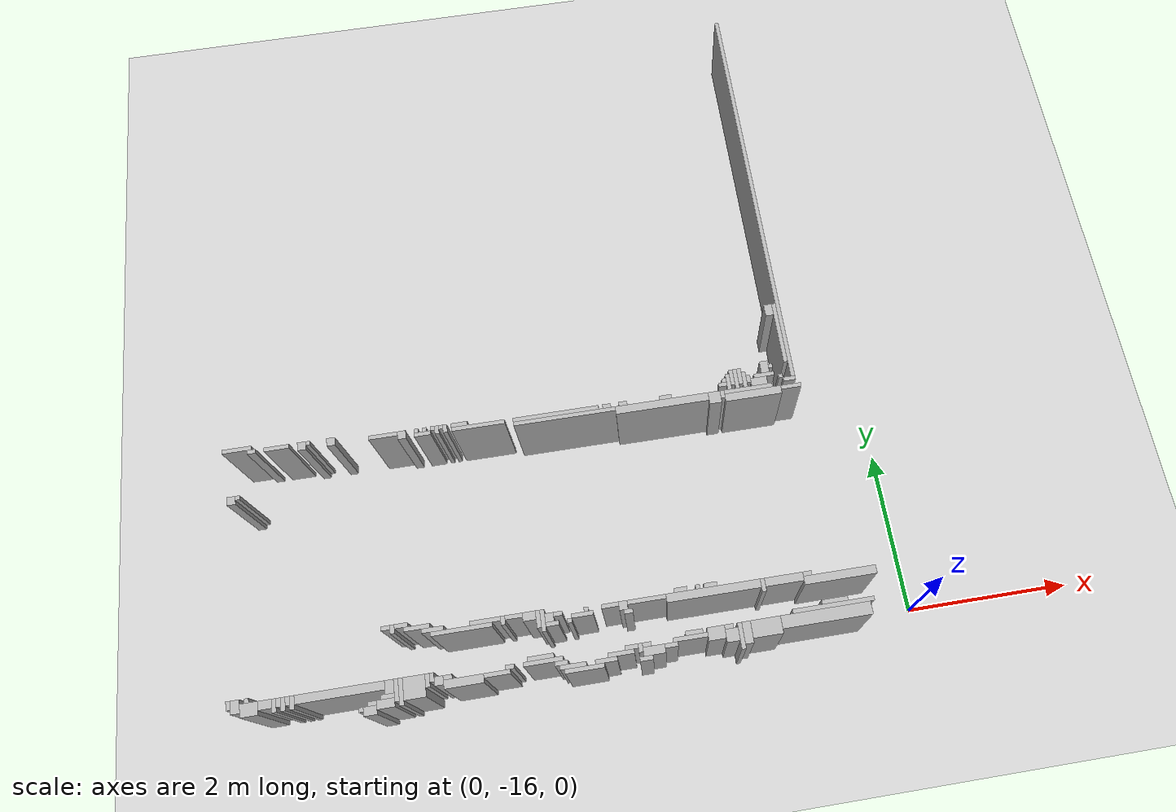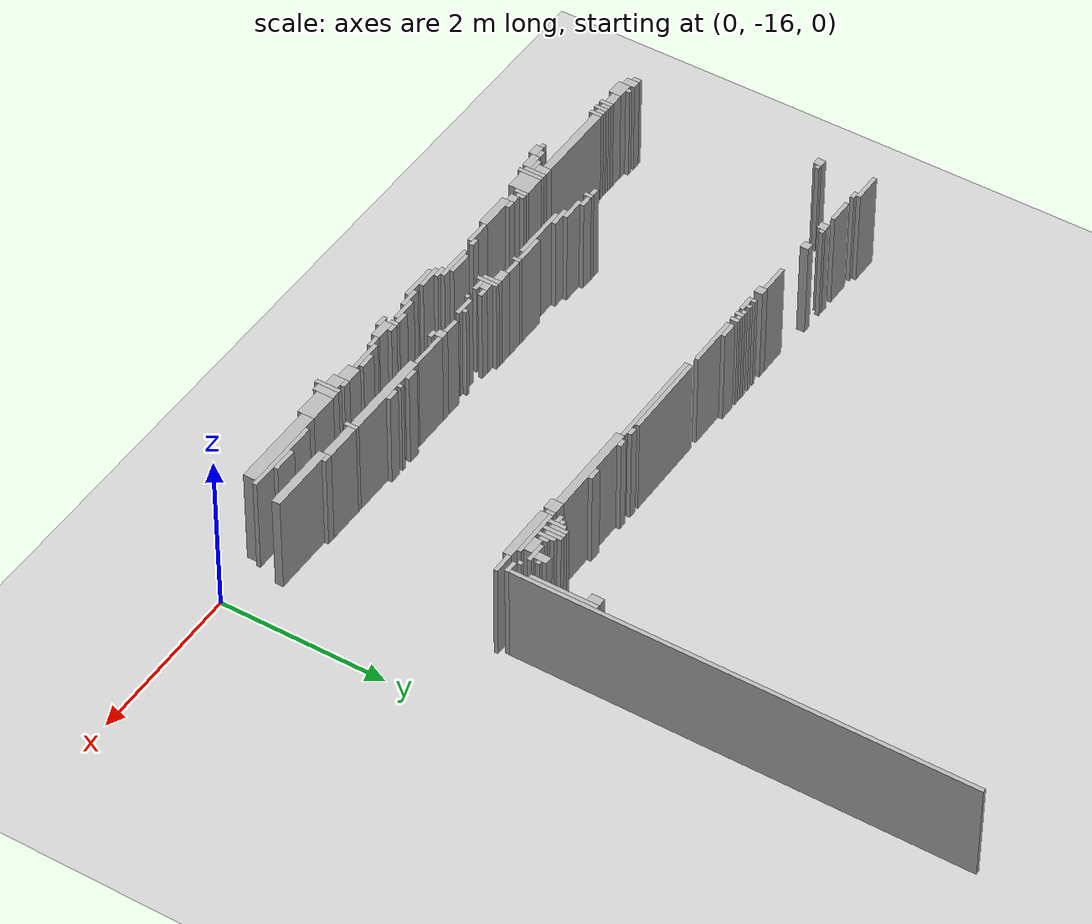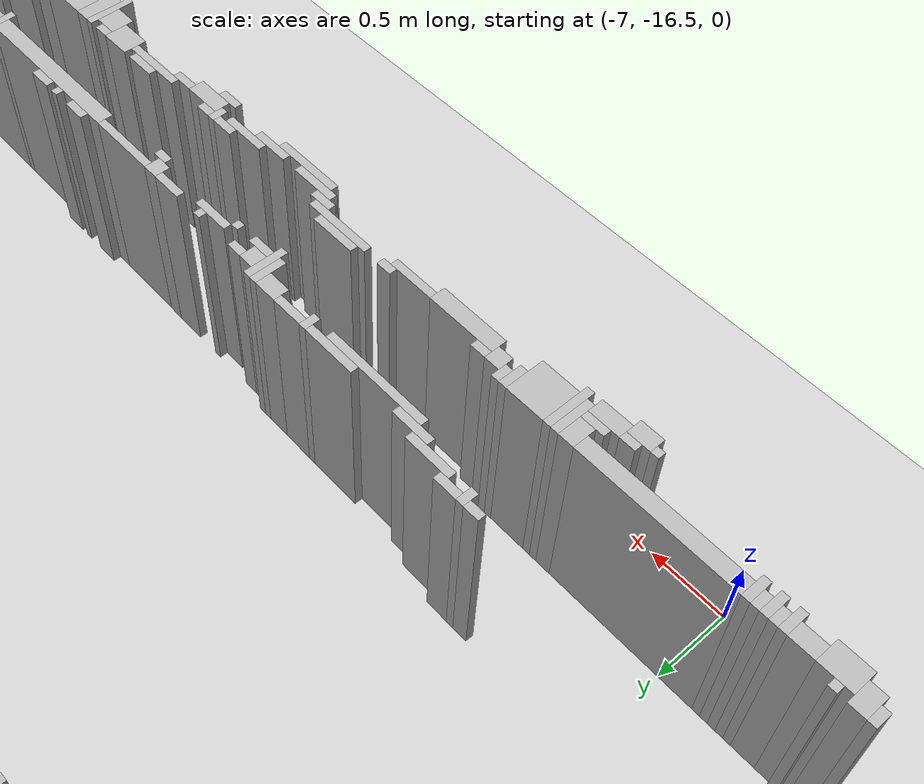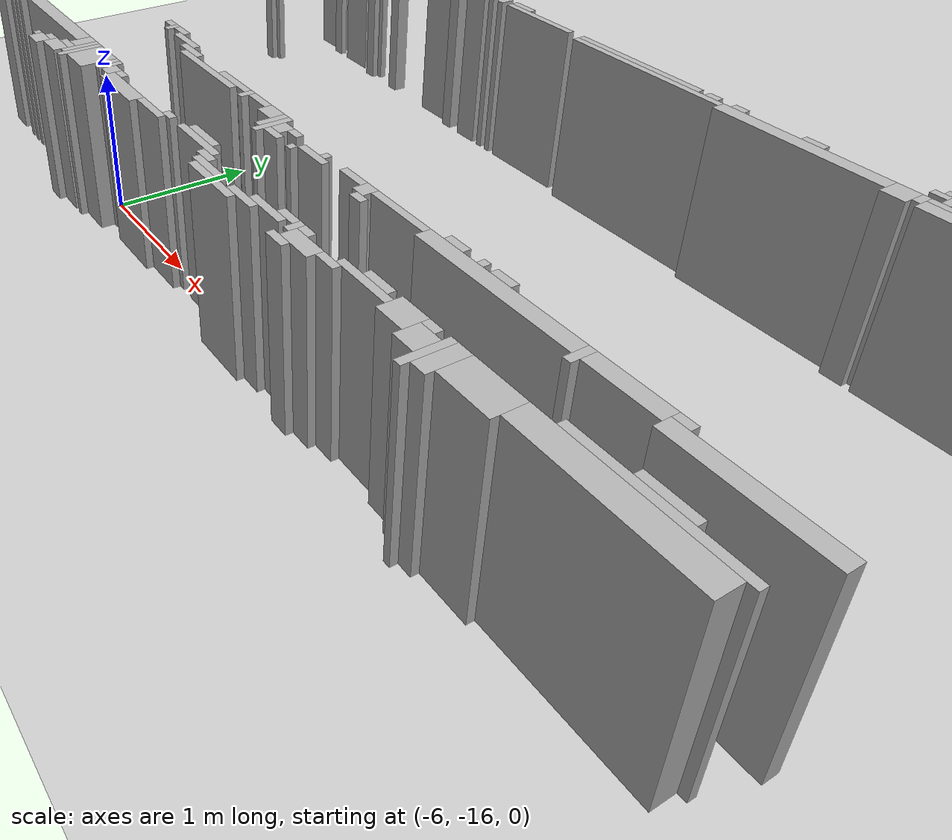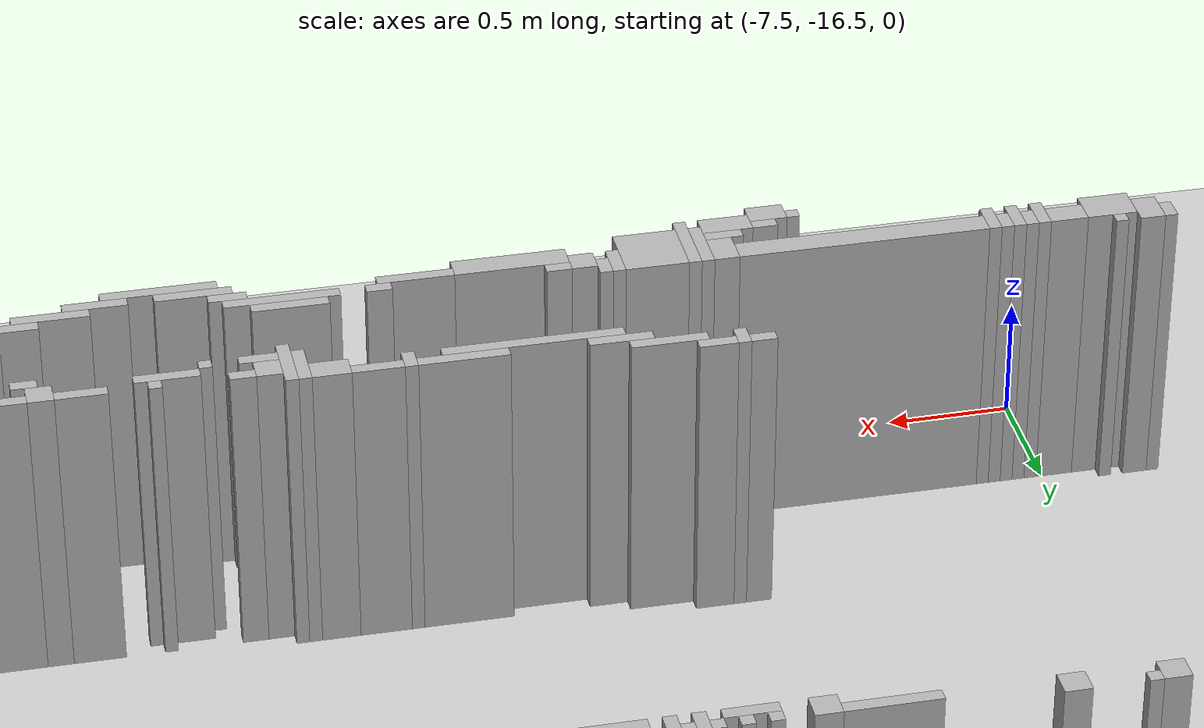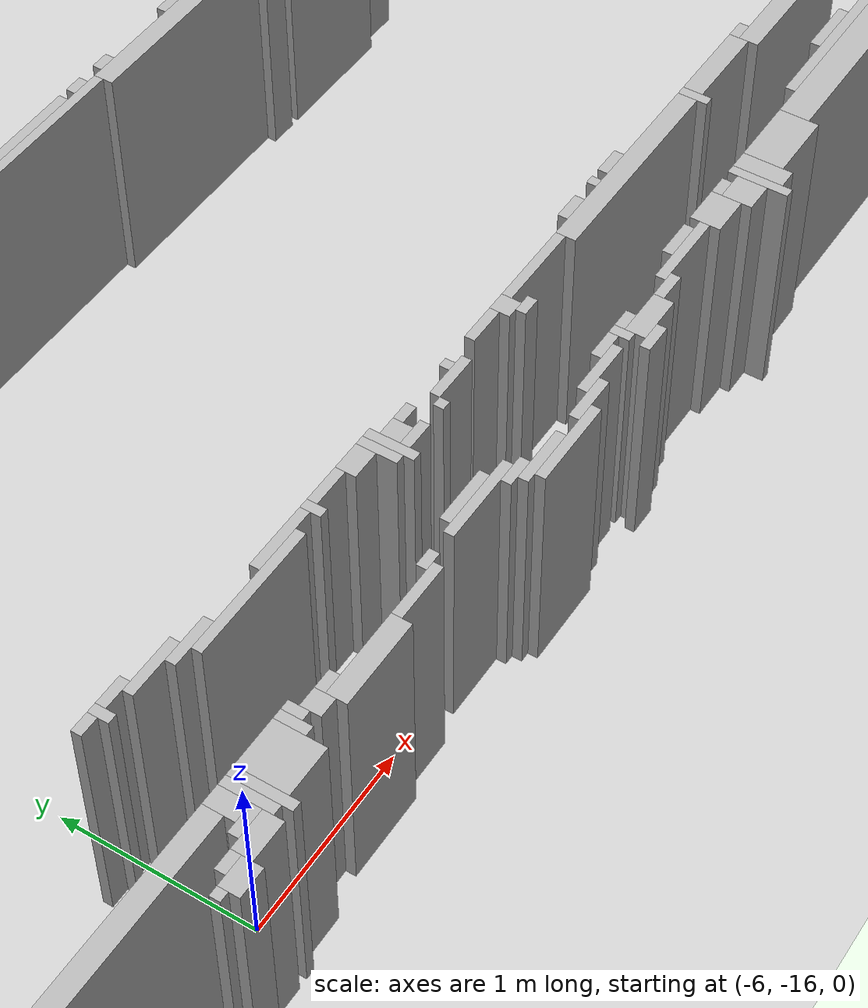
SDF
<sdf version="1.6">
 <world name="d10_floor">
  <include><uri>model://sun</uri></include>
  <include><uri>model://ground_plane</uri></include>
  <model name="d10_walls">
   <static>true</static>
   <link name="w296">
    <pose>-6.400 -16.295 0.60 0 0 0</pose>
    <collision name="c"><geometry><box><size>0.150 0.100 1.20</size></box></geometry></collision>
    <visual name="v">
     <geometry><box><size>0.150 0.100 1.20</size></box></geometry>
     <material><ambient>0.6 0.6 0.6 1</ambient><diffuse>0.7 0.7 0.7 1</diffuse></material>
    </visual>
   </link>
   <link name="w306">
    <pose>-6.500 -16.270 0.60 0 0 0</pose>
    <collision name="c"><geometry><box><size>0.050 0.050 1.20</size></box></geometry></collision>
    <visual name="v">
     <geometry><box><size>0.050 0.050 1.20</size></box></geometry>
     <material><ambient>0.6 0.6 0.6 1</ambient><diffuse>0.7 0.7 0.7 1</diffuse></material>
    </visual>
   </link>
   <link name="w307">
    <pose>-6.225 -16.245 0.60 0 0 0</pose>
    <collision name="c"><geometry><box><size>0.200 0.100 1.20</size></box></geometry></collision>
    <visual name="v">
     <geometry><box><size>0.200 0.100 1.20</size></box></geometry>
     <material><ambient>0.6 0.6 0.6 1</ambient><diffuse>0.7 0.7 0.7 1</diffuse></material>
    </visual>
   </link>
   <link name="w308">
    <pose>-6.050 -16.145 0.60 0 0 0</pose>
    <collision name="c"><geometry><box><size>0.050 0.300 1.20</size></box></geometry></collision>
    <visual name="v">
     <geometry><box><size>0.050 0.300 1.20</size></box></geometry>
     <material><ambient>0.6 0.6 0.6 1</ambient><diffuse>0.7 0.7 0.7 1</diffuse></material>
    </visual>
   </link>
   <link name="w309">
    <pose>-2.200 -16.145 0.60 0 0 0</pose>
    <collision name="c"><geometry><box><size>0.050 0.300 1.20</size></box></geometry></collision>
    <visual name="v">
     <geometry><box><size>0.050 0.300 1.20</size></box></geometry>
     <material><ambient>0.6 0.6 0.6 1</ambient><diffuse>0.7 0.7 0.7 1</diffuse></material>
    </visual>
   </link>
   <link name="w321">
    <pose>-6.375 -16.220 0.60 0 0 0</pose>
    <collision name="c"><geometry><box><size>0.100 0.050 1.20</size></box></geometry></collision>
    <visual name="v">
     <geometry><box><size>0.100 0.050 1.20</size></box></geometry>
     <material><ambient>0.6 0.6 0.6 1</ambient><diffuse>0.7 0.7 0.7 1</diffuse></material>
    </visual>
   </link>
   <link name="w322">
    <pose>-6.100 -16.120 0.60 0 0 0</pose>
    <collision name="c"><geometry><box><size>0.050 0.250 1.20</size></box></geometry></collision>
    <visual name="v">
     <geometry><box><size>0.050 0.250 1.20</size></box></geometry>
     <material><ambient>0.6 0.6 0.6 1</ambient><diffuse>0.7 0.7 0.7 1</diffuse></material>
    </visual>
   </link>
   <link name="w323">
    <pose>-5.900 -16.120 0.60 0 0 0</pose>
    <collision name="c"><geometry><box><size>0.250 0.250 1.20</size></box></geometry></collision>
    <visual name="v">
     <geometry><box><size>0.250 0.250 1.20</size></box></geometry>
     <material><ambient>0.6 0.6 0.6 1</ambient><diffuse>0.7 0.7 0.7 1</diffuse></material>
    </visual>
   </link>
   <link name="w324">
    <pose>-4.000 -16.220 0.60 0 0 0</pose>
    <collision name="c"><geometry><box><size>0.450 0.050 1.20</size></box></geometry></collision>
    <visual name="v">
     <geometry><box><size>0.450 0.050 1.20</size></box></geometry>
     <material><ambient>0.6 0.6 0.6 1</ambient><diffuse>0.7 0.7 0.7 1</diffuse></material>
    </visual>
   </link>
   <link name="w325">
    <pose>-3.300 -16.220 0.60 0 0 0</pose>
    <collision name="c"><geometry><box><size>0.150 0.050 1.20</size></box></geometry></collision>
    <visual name="v">
     <geometry><box><size>0.150 0.050 1.20</size></box></geometry>
     <material><ambient>0.6 0.6 0.6 1</ambient><diffuse>0.7 0.7 0.7 1</diffuse></material>
    </visual>
   </link>
   <link name="w326">
    <pose>-2.125 -16.120 0.60 0 0 0</pose>
    <collision name="c"><geometry><box><size>0.100 0.250 1.20</size></box></geometry></collision>
    <visual name="v">
     <geometry><box><size>0.100 0.250 1.20</size></box></geometry>
     <material><ambient>0.6 0.6 0.6 1</ambient><diffuse>0.7 0.7 0.7 1</diffuse></material>
    </visual>
   </link>
   <link name="w339">
    <pose>-6.200 -16.170 0.60 0 0 0</pose>
    <collision name="c"><geometry><box><size>0.150 0.050 1.20</size></box></geometry></collision>
    <visual name="v">
     <geometry><box><size>0.150 0.050 1.20</size></box></geometry>
     <material><ambient>0.6 0.6 0.6 1</ambient><diffuse>0.7 0.7 0.7 1</diffuse></material>
    </visual>
   </link>
   <link name="w340">
    <pose>-5.350 -16.145 0.60 0 0 0</pose>
    <collision name="c"><geometry><box><size>0.450 0.100 1.20</size></box></geometry></collision>
    <visual name="v">
     <geometry><box><size>0.450 0.100 1.20</size></box></geometry>
     <material><ambient>0.6 0.6 0.6 1</ambient><diffuse>0.7 0.7 0.7 1</diffuse></material>
    </visual>
   </link>
   <link name="w341">
    <pose>-4.125 -16.170 0.60 0 0 0</pose>
    <collision name="c"><geometry><box><size>0.300 0.050 1.20</size></box></geometry></collision>
    <visual name="v">
     <geometry><box><size>0.300 0.050 1.20</size></box></geometry>
     <material><ambient>0.6 0.6 0.6 1</ambient><diffuse>0.7 0.7 0.7 1</diffuse></material>
    </visual>
   </link>
   <link name="w342">
    <pose>-3.750 -16.170 0.60 0 0 0</pose>
    <collision name="c"><geometry><box><size>0.250 0.050 1.20</size></box></geometry></collision>
    <visual name="v">
     <geometry><box><size>0.250 0.050 1.20</size></box></geometry>
     <material><ambient>0.6 0.6 0.6 1</ambient><diffuse>0.7 0.7 0.7 1</diffuse></material>
    </visual>
   </link>
   <link name="w343">
    <pose>-3.200 -16.145 0.60 0 0 0</pose>
    <collision name="c"><geometry><box><size>0.250 0.100 1.20</size></box></geometry></collision>
    <visual name="v">
     <geometry><box><size>0.250 0.100 1.20</size></box></geometry>
     <material><ambient>0.6 0.6 0.6 1</ambient><diffuse>0.7 0.7 0.7 1</diffuse></material>
    </visual>
   </link>
   <link name="w344">
    <pose>-2.300 -16.120 0.60 0 0 0</pose>
    <collision name="c"><geometry><box><size>0.150 0.150 1.20</size></box></geometry></collision>
    <visual name="v">
     <geometry><box><size>0.150 0.150 1.20</size></box></geometry>
     <material><ambient>0.6 0.6 0.6 1</ambient><diffuse>0.7 0.7 0.7 1</diffuse></material>
    </visual>
   </link>
   <link name="w345">
    <pose>-1.900 -16.095 0.60 0 0 0</pose>
    <collision name="c"><geometry><box><size>0.350 0.200 1.20</size></box></geometry></collision>
    <visual name="v">
     <geometry><box><size>0.350 0.200 1.20</size></box></geometry>
     <material><ambient>0.6 0.6 0.6 1</ambient><diffuse>0.7 0.7 0.7 1</diffuse></material>
    </visual>
   </link>
   <link name="w361">
    <pose>-7.725 -16.070 0.60 0 0 0</pose>
    <collision name="c"><geometry><box><size>0.200 0.150 1.20</size></box></geometry></collision>
    <visual name="v">
     <geometry><box><size>0.200 0.150 1.20</size></box></geometry>
     <material><ambient>0.6 0.6 0.6 1</ambient><diffuse>0.7 0.7 0.7 1</diffuse></material>
    </visual>
   </link>
   <link name="w362">
    <pose>-7.450 -16.070 0.60 0 0 0</pose>
    <collision name="c"><geometry><box><size>0.050 0.150 1.20</size></box></geometry></collision>
    <visual name="v">
     <geometry><box><size>0.050 0.150 1.20</size></box></geometry>
     <material><ambient>0.6 0.6 0.6 1</ambient><diffuse>0.7 0.7 0.7 1</diffuse></material>
    </visual>
   </link>
   <link name="w363">
    <pose>-7.350 -16.070 0.60 0 0 0</pose>
    <collision name="c"><geometry><box><size>0.050 0.150 1.20</size></box></geometry></collision>
    <visual name="v">
     <geometry><box><size>0.050 0.150 1.20</size></box></geometry>
     <material><ambient>0.6 0.6 0.6 1</ambient><diffuse>0.7 0.7 0.7 1</diffuse></material>
    </visual>
   </link>
   <link name="w364">
    <pose>-7.250 -16.070 0.60 0 0 0</pose>
    <collision name="c"><geometry><box><size>0.050 0.150 1.20</size></box></geometry></collision>
    <visual name="v">
     <geometry><box><size>0.050 0.150 1.20</size></box></geometry>
     <material><ambient>0.6 0.6 0.6 1</ambient><diffuse>0.7 0.7 0.7 1</diffuse></material>
    </visual>
   </link>
   <link name="w365">
    <pose>-6.175 -16.070 0.60 0 0 0</pose>
    <collision name="c"><geometry><box><size>0.100 0.150 1.20</size></box></geometry></collision>
    <visual name="v">
     <geometry><box><size>0.100 0.150 1.20</size></box></geometry>
     <material><ambient>0.6 0.6 0.6 1</ambient><diffuse>0.7 0.7 0.7 1</diffuse></material>
    </visual>
   </link>
   <link name="w366">
    <pose>-5.750 -16.070 0.60 0 0 0</pose>
    <collision name="c"><geometry><box><size>0.050 0.150 1.20</size></box></geometry></collision>
    <visual name="v">
     <geometry><box><size>0.050 0.150 1.20</size></box></geometry>
     <material><ambient>0.6 0.6 0.6 1</ambient><diffuse>0.7 0.7 0.7 1</diffuse></material>
    </visual>
   </link>
   <link name="w367">
    <pose>-5.625 -16.095 0.60 0 0 0</pose>
    <collision name="c"><geometry><box><size>0.100 0.100 1.20</size></box></geometry></collision>
    <visual name="v">
     <geometry><box><size>0.100 0.100 1.20</size></box></geometry>
     <material><ambient>0.6 0.6 0.6 1</ambient><diffuse>0.7 0.7 0.7 1</diffuse></material>
    </visual>
   </link>
   <link name="w368">
    <pose>-4.975 -16.120 0.60 0 0 0</pose>
    <collision name="c"><geometry><box><size>0.300 0.050 1.20</size></box></geometry></collision>
    <visual name="v">
     <geometry><box><size>0.300 0.050 1.20</size></box></geometry>
     <material><ambient>0.6 0.6 0.6 1</ambient><diffuse>0.7 0.7 0.7 1</diffuse></material>
    </visual>
   </link>
   <link name="w369">
    <pose>-4.250 -16.120 0.60 0 0 0</pose>
    <collision name="c"><geometry><box><size>0.150 0.050 1.20</size></box></geometry></collision>
    <visual name="v">
     <geometry><box><size>0.150 0.050 1.20</size></box></geometry>
     <material><ambient>0.6 0.6 0.6 1</ambient><diffuse>0.7 0.7 0.7 1</diffuse></material>
    </visual>
   </link>
   <link name="w370">
    <pose>-3.575 -16.120 0.60 0 0 0</pose>
    <collision name="c"><geometry><box><size>0.300 0.050 1.20</size></box></geometry></collision>
    <visual name="v">
     <geometry><box><size>0.300 0.050 1.20</size></box></geometry>
     <material><ambient>0.6 0.6 0.6 1</ambient><diffuse>0.7 0.7 0.7 1</diffuse></material>
    </visual>
   </link>
   <link name="w371">
    <pose>-3.350 -16.095 0.60 0 0 0</pose>
    <collision name="c"><geometry><box><size>0.050 0.100 1.20</size></box></geometry></collision>
    <visual name="v">
     <geometry><box><size>0.050 0.100 1.20</size></box></geometry>
     <material><ambient>0.6 0.6 0.6 1</ambient><diffuse>0.7 0.7 0.7 1</diffuse></material>
    </visual>
   </link>
   <link name="w372">
    <pose>-3.000 -16.120 0.60 0 0 0</pose>
    <collision name="c"><geometry><box><size>0.150 0.050 1.20</size></box></geometry></collision>
    <visual name="v">
     <geometry><box><size>0.150 0.050 1.20</size></box></geometry>
     <material><ambient>0.6 0.6 0.6 1</ambient><diffuse>0.7 0.7 0.7 1</diffuse></material>
    </visual>
   </link>
   <link name="w373">
    <pose>-2.475 -16.070 0.60 0 0 0</pose>
    <collision name="c"><geometry><box><size>0.200 0.150 1.20</size></box></geometry></collision>
    <visual name="v">
     <geometry><box><size>0.200 0.150 1.20</size></box></geometry>
     <material><ambient>0.6 0.6 0.6 1</ambient><diffuse>0.7 0.7 0.7 1</diffuse></material>
    </visual>
   </link>
   <link name="w374">
    <pose>-1.200 -16.070 0.60 0 0 0</pose>
    <collision name="c"><geometry><box><size>1.050 0.150 1.20</size></box></geometry></collision>
    <visual name="v">
     <geometry><box><size>1.050 0.150 1.20</size></box></geometry>
     <material><ambient>0.6 0.6 0.6 1</ambient><diffuse>0.7 0.7 0.7 1</diffuse></material>
    </visual>
   </link>
   <link name="w395">
    <pose>-7.875 -16.020 0.60 0 0 0</pose>
    <collision name="c"><geometry><box><size>0.100 0.150 1.20</size></box></geometry></collision>
    <visual name="v">
     <geometry><box><size>0.100 0.150 1.20</size></box></geometry>
     <material><ambient>0.6 0.6 0.6 1</ambient><diffuse>0.7 0.7 0.7 1</diffuse></material>
    </visual>
   </link>
   <link name="w396">
    <pose>-7.550 -16.045 0.60 0 0 0</pose>
    <collision name="c"><geometry><box><size>0.150 0.100 1.20</size></box></geometry></collision>
    <visual name="v">
     <geometry><box><size>0.150 0.100 1.20</size></box></geometry>
     <material><ambient>0.6 0.6 0.6 1</ambient><diffuse>0.7 0.7 0.7 1</diffuse></material>
    </visual>
   </link>
   <link name="w397">
    <pose>-7.400 -16.045 0.60 0 0 0</pose>
    <collision name="c"><geometry><box><size>0.050 0.100 1.20</size></box></geometry></collision>
    <visual name="v">
     <geometry><box><size>0.050 0.100 1.20</size></box></geometry>
     <material><ambient>0.6 0.6 0.6 1</ambient><diffuse>0.7 0.7 0.7 1</diffuse></material>
    </visual>
   </link>
   <link name="w398">
    <pose>-7.300 -16.045 0.60 0 0 0</pose>
    <collision name="c"><geometry><box><size>0.050 0.100 1.20</size></box></geometry></collision>
    <visual name="v">
     <geometry><box><size>0.050 0.100 1.20</size></box></geometry>
     <material><ambient>0.6 0.6 0.6 1</ambient><diffuse>0.7 0.7 0.7 1</diffuse></material>
    </visual>
   </link>
   <link name="w399">
    <pose>-6.725 -16.045 0.60 0 0 0</pose>
    <collision name="c"><geometry><box><size>1.000 0.100 1.20</size></box></geometry></collision>
    <visual name="v">
     <geometry><box><size>1.000 0.100 1.20</size></box></geometry>
     <material><ambient>0.6 0.6 0.6 1</ambient><diffuse>0.7 0.7 0.7 1</diffuse></material>
    </visual>
   </link>
   <link name="w400">
    <pose>-5.700 -16.045 0.60 0 0 0</pose>
    <collision name="c"><geometry><box><size>0.050 0.100 1.20</size></box></geometry></collision>
    <visual name="v">
     <geometry><box><size>0.050 0.100 1.20</size></box></geometry>
     <material><ambient>0.6 0.6 0.6 1</ambient><diffuse>0.7 0.7 0.7 1</diffuse></material>
    </visual>
   </link>
   <link name="w401">
    <pose>-5.525 -16.070 0.60 0 0 0</pose>
    <collision name="c"><geometry><box><size>0.100 0.050 1.20</size></box></geometry></collision>
    <visual name="v">
     <geometry><box><size>0.100 0.050 1.20</size></box></geometry>
     <material><ambient>0.6 0.6 0.6 1</ambient><diffuse>0.7 0.7 0.7 1</diffuse></material>
    </visual>
   </link>
   <link name="w402">
    <pose>-4.825 -16.070 0.60 0 0 0</pose>
    <collision name="c"><geometry><box><size>0.100 0.050 1.20</size></box></geometry></collision>
    <visual name="v">
     <geometry><box><size>0.100 0.050 1.20</size></box></geometry>
     <material><ambient>0.6 0.6 0.6 1</ambient><diffuse>0.7 0.7 0.7 1</diffuse></material>
    </visual>
   </link>
   <link name="w403">
    <pose>-4.450 -16.070 0.60 0 0 0</pose>
    <collision name="c"><geometry><box><size>0.450 0.050 1.20</size></box></geometry></collision>
    <visual name="v">
     <geometry><box><size>0.450 0.050 1.20</size></box></geometry>
     <material><ambient>0.6 0.6 0.6 1</ambient><diffuse>0.7 0.7 0.7 1</diffuse></material>
    </visual>
   </link>
   <link name="w404">
    <pose>-3.450 -16.070 0.60 0 0 0</pose>
    <collision name="c"><geometry><box><size>0.150 0.050 1.20</size></box></geometry></collision>
    <visual name="v">
     <geometry><box><size>0.150 0.050 1.20</size></box></geometry>
     <material><ambient>0.6 0.6 0.6 1</ambient><diffuse>0.7 0.7 0.7 1</diffuse></material>
    </visual>
   </link>
   <link name="w405">
    <pose>-3.275 -16.070 0.60 0 0 0</pose>
    <collision name="c"><geometry><box><size>0.100 0.050 1.20</size></box></geometry></collision>
    <visual name="v">
     <geometry><box><size>0.100 0.050 1.20</size></box></geometry>
     <material><ambient>0.6 0.6 0.6 1</ambient><diffuse>0.7 0.7 0.7 1</diffuse></material>
    </visual>
   </link>
   <link name="w406">
    <pose>-2.775 -16.070 0.60 0 0 0</pose>
    <collision name="c"><geometry><box><size>0.400 0.050 1.20</size></box></geometry></collision>
    <visual name="v">
     <geometry><box><size>0.400 0.050 1.20</size></box></geometry>
     <material><ambient>0.6 0.6 0.6 1</ambient><diffuse>0.7 0.7 0.7 1</diffuse></material>
    </visual>
   </link>
   <link name="w427">
    <pose>-7.950 -15.995 0.60 0 0 0</pose>
    <collision name="c"><geometry><box><size>0.050 0.100 1.20</size></box></geometry></collision>
    <visual name="v">
     <geometry><box><size>0.050 0.100 1.20</size></box></geometry>
     <material><ambient>0.6 0.6 0.6 1</ambient><diffuse>0.7 0.7 0.7 1</diffuse></material>
    </visual>
   </link>
   <link name="w428">
    <pose>-4.475 -16.020 0.60 0 0 0</pose>
    <collision name="c"><geometry><box><size>0.300 0.050 1.20</size></box></geometry></collision>
    <visual name="v">
     <geometry><box><size>0.300 0.050 1.20</size></box></geometry>
     <material><ambient>0.6 0.6 0.6 1</ambient><diffuse>0.7 0.7 0.7 1</diffuse></material>
    </visual>
   </link>
   <link name="w429">
    <pose>-2.725 -16.020 0.60 0 0 0</pose>
    <collision name="c"><geometry><box><size>0.200 0.050 1.20</size></box></geometry></collision>
    <visual name="v">
     <geometry><box><size>0.200 0.050 1.20</size></box></geometry>
     <material><ambient>0.6 0.6 0.6 1</ambient><diffuse>0.7 0.7 0.7 1</diffuse></material>
    </visual>
   </link>
   <link name="w430">
    <pose>-2.325 -16.020 0.60 0 0 0</pose>
    <collision name="c"><geometry><box><size>0.100 0.050 1.20</size></box></geometry></collision>
    <visual name="v">
     <geometry><box><size>0.100 0.050 1.20</size></box></geometry>
     <material><ambient>0.6 0.6 0.6 1</ambient><diffuse>0.7 0.7 0.7 1</diffuse></material>
    </visual>
   </link>
   <link name="w454">
    <pose>-7.750 -15.970 0.60 0 0 0</pose>
    <collision name="c"><geometry><box><size>0.050 0.050 1.20</size></box></geometry></collision>
    <visual name="v">
     <geometry><box><size>0.050 0.050 1.20</size></box></geometry>
     <material><ambient>0.6 0.6 0.6 1</ambient><diffuse>0.7 0.7 0.7 1</diffuse></material>
    </visual>
   </link>
   <link name="w455">
    <pose>-1.100 -15.970 0.60 0 0 0</pose>
    <collision name="c"><geometry><box><size>0.950 0.050 1.20</size></box></geometry></collision>
    <visual name="v">
     <geometry><box><size>0.950 0.050 1.20</size></box></geometry>
     <material><ambient>0.6 0.6 0.6 1</ambient><diffuse>0.7 0.7 0.7 1</diffuse></material>
    </visual>
   </link>
   <link name="w469">
    <pose>-1.075 -15.920 0.60 0 0 0</pose>
    <collision name="c"><geometry><box><size>0.300 0.050 1.20</size></box></geometry></collision>
    <visual name="v">
     <geometry><box><size>0.300 0.050 1.20</size></box></geometry>
     <material><ambient>0.6 0.6 0.6 1</ambient><diffuse>0.7 0.7 0.7 1</diffuse></material>
    </visual>
   </link>
   <link name="w509">
    <pose>-4.400 -15.620 0.60 0 0 0</pose>
    <collision name="c"><geometry><box><size>0.050 0.250 1.20</size></box></geometry></collision>
    <visual name="v">
     <geometry><box><size>0.050 0.250 1.20</size></box></geometry>
     <material><ambient>0.6 0.6 0.6 1</ambient><diffuse>0.7 0.7 0.7 1</diffuse></material>
    </visual>
   </link>
   <link name="w514">
    <pose>-4.450 -15.595 0.60 0 0 0</pose>
    <collision name="c"><geometry><box><size>0.050 0.200 1.20</size></box></geometry></collision>
    <visual name="v">
     <geometry><box><size>0.050 0.200 1.20</size></box></geometry>
     <material><ambient>0.6 0.6 0.6 1</ambient><diffuse>0.7 0.7 0.7 1</diffuse></material>
    </visual>
   </link>
   <link name="w515">
    <pose>-4.300 -15.670 0.60 0 0 0</pose>
    <collision name="c"><geometry><box><size>0.150 0.050 1.20</size></box></geometry></collision>
    <visual name="v">
     <geometry><box><size>0.150 0.050 1.20</size></box></geometry>
     <material><ambient>0.6 0.6 0.6 1</ambient><diffuse>0.7 0.7 0.7 1</diffuse></material>
    </visual>
   </link>
   <link name="w516">
    <pose>-4.100 -15.670 0.60 0 0 0</pose>
    <collision name="c"><geometry><box><size>0.050 0.050 1.20</size></box></geometry></collision>
    <visual name="v">
     <geometry><box><size>0.050 0.050 1.20</size></box></geometry>
     <material><ambient>0.6 0.6 0.6 1</ambient><diffuse>0.7 0.7 0.7 1</diffuse></material>
    </visual>
   </link>
   <link name="w517">
    <pose>-3.425 -15.670 0.60 0 0 0</pose>
    <collision name="c"><geometry><box><size>0.100 0.050 1.20</size></box></geometry></collision>
    <visual name="v">
     <geometry><box><size>0.100 0.050 1.20</size></box></geometry>
     <material><ambient>0.6 0.6 0.6 1</ambient><diffuse>0.7 0.7 0.7 1</diffuse></material>
    </visual>
   </link>
   <link name="w518">
    <pose>-1.850 -15.620 0.60 0 0 0</pose>
    <collision name="c"><geometry><box><size>0.050 0.150 1.20</size></box></geometry></collision>
    <visual name="v">
     <geometry><box><size>0.050 0.150 1.20</size></box></geometry>
     <material><ambient>0.6 0.6 0.6 1</ambient><diffuse>0.7 0.7 0.7 1</diffuse></material>
    </visual>
   </link>
   <link name="w519">
    <pose>-0.950 -15.645 0.60 0 0 0</pose>
    <collision name="c"><geometry><box><size>0.850 0.100 1.20</size></box></geometry></collision>
    <visual name="v">
     <geometry><box><size>0.850 0.100 1.20</size></box></geometry>
     <material><ambient>0.6 0.6 0.6 1</ambient><diffuse>0.7 0.7 0.7 1</diffuse></material>
    </visual>
   </link>
   <link name="w521">
    <pose>-4.325 -15.595 0.60 0 0 0</pose>
    <collision name="c"><geometry><box><size>0.100 0.100 1.20</size></box></geometry></collision>
    <visual name="v">
     <geometry><box><size>0.100 0.100 1.20</size></box></geometry>
     <material><ambient>0.6 0.6 0.6 1</ambient><diffuse>0.7 0.7 0.7 1</diffuse></material>
    </visual>
   </link>
   <link name="w522">
    <pose>-3.950 -15.620 0.60 0 0 0</pose>
    <collision name="c"><geometry><box><size>0.250 0.050 1.20</size></box></geometry></collision>
    <visual name="v">
     <geometry><box><size>0.250 0.050 1.20</size></box></geometry>
     <material><ambient>0.6 0.6 0.6 1</ambient><diffuse>0.7 0.7 0.7 1</diffuse></material>
    </visual>
   </link>
   <link name="w523">
    <pose>-3.475 -15.595 0.60 0 0 0</pose>
    <collision name="c"><geometry><box><size>0.100 0.100 1.20</size></box></geometry></collision>
    <visual name="v">
     <geometry><box><size>0.100 0.100 1.20</size></box></geometry>
     <material><ambient>0.6 0.6 0.6 1</ambient><diffuse>0.7 0.7 0.7 1</diffuse></material>
    </visual>
   </link>
   <link name="w524">
    <pose>-2.425 -15.595 0.60 0 0 0</pose>
    <collision name="c"><geometry><box><size>1.100 0.100 1.20</size></box></geometry></collision>
    <visual name="v">
     <geometry><box><size>1.100 0.100 1.20</size></box></geometry>
     <material><ambient>0.6 0.6 0.6 1</ambient><diffuse>0.7 0.7 0.7 1</diffuse></material>
    </visual>
   </link>
   <link name="w525">
    <pose>-1.600 -15.595 0.60 0 0 0</pose>
    <collision name="c"><geometry><box><size>0.450 0.100 1.20</size></box></geometry></collision>
    <visual name="v">
     <geometry><box><size>0.450 0.100 1.20</size></box></geometry>
     <material><ambient>0.6 0.6 0.6 1</ambient><diffuse>0.7 0.7 0.7 1</diffuse></material>
    </visual>
   </link>
   <link name="w528">
    <pose>-5.325 -15.570 0.60 0 0 0</pose>
    <collision name="c"><geometry><box><size>0.700 0.050 1.20</size></box></geometry></collision>
    <visual name="v">
     <geometry><box><size>0.700 0.050 1.20</size></box></geometry>
     <material><ambient>0.6 0.6 0.6 1</ambient><diffuse>0.7 0.7 0.7 1</diffuse></material>
    </visual>
   </link>
   <link name="w529">
    <pose>-4.850 -15.545 0.60 0 0 0</pose>
    <collision name="c"><geometry><box><size>0.050 0.100 1.20</size></box></geometry></collision>
    <visual name="v">
     <geometry><box><size>0.050 0.100 1.20</size></box></geometry>
     <material><ambient>0.6 0.6 0.6 1</ambient><diffuse>0.7 0.7 0.7 1</diffuse></material>
    </visual>
   </link>
   <link name="w530">
    <pose>-4.550 -15.545 0.60 0 0 0</pose>
    <collision name="c"><geometry><box><size>0.150 0.100 1.20</size></box></geometry></collision>
    <visual name="v">
     <geometry><box><size>0.150 0.100 1.20</size></box></geometry>
     <material><ambient>0.6 0.6 0.6 1</ambient><diffuse>0.7 0.7 0.7 1</diffuse></material>
    </visual>
   </link>
   <link name="w531">
    <pose>-4.225 -15.570 0.60 0 0 0</pose>
    <collision name="c"><geometry><box><size>0.100 0.050 1.20</size></box></geometry></collision>
    <visual name="v">
     <geometry><box><size>0.100 0.050 1.20</size></box></geometry>
     <material><ambient>0.6 0.6 0.6 1</ambient><diffuse>0.7 0.7 0.7 1</diffuse></material>
    </visual>
   </link>
   <link name="w532">
    <pose>-3.900 -15.570 0.60 0 0 0</pose>
    <collision name="c"><geometry><box><size>0.050 0.050 1.20</size></box></geometry></collision>
    <visual name="v">
     <geometry><box><size>0.050 0.050 1.20</size></box></geometry>
     <material><ambient>0.6 0.6 0.6 1</ambient><diffuse>0.7 0.7 0.7 1</diffuse></material>
    </visual>
   </link>
   <link name="w533">
    <pose>-3.625 -15.570 0.60 0 0 0</pose>
    <collision name="c"><geometry><box><size>0.200 0.050 1.20</size></box></geometry></collision>
    <visual name="v">
     <geometry><box><size>0.200 0.050 1.20</size></box></geometry>
     <material><ambient>0.6 0.6 0.6 1</ambient><diffuse>0.7 0.7 0.7 1</diffuse></material>
    </visual>
   </link>
   <link name="w534">
    <pose>-3.200 -15.570 0.60 0 0 0</pose>
    <collision name="c"><geometry><box><size>0.450 0.050 1.20</size></box></geometry></collision>
    <visual name="v">
     <geometry><box><size>0.450 0.050 1.20</size></box></geometry>
     <material><ambient>0.6 0.6 0.6 1</ambient><diffuse>0.7 0.7 0.7 1</diffuse></material>
    </visual>
   </link>
   <link name="w535">
    <pose>-1.325 -15.570 0.60 0 0 0</pose>
    <collision name="c"><geometry><box><size>0.100 0.050 1.20</size></box></geometry></collision>
    <visual name="v">
     <geometry><box><size>0.100 0.050 1.20</size></box></geometry>
     <material><ambient>0.6 0.6 0.6 1</ambient><diffuse>0.7 0.7 0.7 1</diffuse></material>
    </visual>
   </link>
   <link name="w541">
    <pose>-5.650 -15.520 0.60 0 0 0</pose>
    <collision name="c"><geometry><box><size>0.250 0.050 1.20</size></box></geometry></collision>
    <visual name="v">
     <geometry><box><size>0.250 0.050 1.20</size></box></geometry>
     <material><ambient>0.6 0.6 0.6 1</ambient><diffuse>0.7 0.7 0.7 1</diffuse></material>
    </visual>
   </link>
   <link name="w542">
    <pose>-5.050 -15.520 0.60 0 0 0</pose>
    <collision name="c"><geometry><box><size>0.350 0.050 1.20</size></box></geometry></collision>
    <visual name="v">
     <geometry><box><size>0.350 0.050 1.20</size></box></geometry>
     <material><ambient>0.6 0.6 0.6 1</ambient><diffuse>0.7 0.7 0.7 1</diffuse></material>
    </visual>
   </link>
   <link name="w543">
    <pose>-4.725 -15.520 0.60 0 0 0</pose>
    <collision name="c"><geometry><box><size>0.200 0.050 1.20</size></box></geometry></collision>
    <visual name="v">
     <geometry><box><size>0.200 0.050 1.20</size></box></geometry>
     <material><ambient>0.6 0.6 0.6 1</ambient><diffuse>0.7 0.7 0.7 1</diffuse></material>
    </visual>
   </link>
   <link name="w544">
    <pose>-2.800 -15.520 0.60 0 0 0</pose>
    <collision name="c"><geometry><box><size>0.150 0.050 1.20</size></box></geometry></collision>
    <visual name="v">
     <geometry><box><size>0.150 0.050 1.20</size></box></geometry>
     <material><ambient>0.6 0.6 0.6 1</ambient><diffuse>0.7 0.7 0.7 1</diffuse></material>
    </visual>
   </link>
   <link name="w545">
    <pose>-2.600 -15.520 0.60 0 0 0</pose>
    <collision name="c"><geometry><box><size>0.050 0.050 1.20</size></box></geometry></collision>
    <visual name="v">
     <geometry><box><size>0.050 0.050 1.20</size></box></geometry>
     <material><ambient>0.6 0.6 0.6 1</ambient><diffuse>0.7 0.7 0.7 1</diffuse></material>
    </visual>
   </link>
   <link name="w546">
    <pose>-2.450 -15.520 0.60 0 0 0</pose>
    <collision name="c"><geometry><box><size>0.150 0.050 1.20</size></box></geometry></collision>
    <visual name="v">
     <geometry><box><size>0.150 0.050 1.20</size></box></geometry>
     <material><ambient>0.6 0.6 0.6 1</ambient><diffuse>0.7 0.7 0.7 1</diffuse></material>
    </visual>
   </link>
   <link name="w550">
    <pose>-6.100 -15.445 0.60 0 0 0</pose>
    <collision name="c"><geometry><box><size>0.050 0.100 1.20</size></box></geometry></collision>
    <visual name="v">
     <geometry><box><size>0.050 0.100 1.20</size></box></geometry>
     <material><ambient>0.6 0.6 0.6 1</ambient><diffuse>0.7 0.7 0.7 1</diffuse></material>
    </visual>
   </link>
   <link name="w551">
    <pose>-5.825 -15.470 0.60 0 0 0</pose>
    <collision name="c"><geometry><box><size>0.300 0.050 1.20</size></box></geometry></collision>
    <visual name="v">
     <geometry><box><size>0.300 0.050 1.20</size></box></geometry>
     <material><ambient>0.6 0.6 0.6 1</ambient><diffuse>0.7 0.7 0.7 1</diffuse></material>
    </visual>
   </link>
   <link name="w553">
    <pose>-6.175 -15.420 0.60 0 0 0</pose>
    <collision name="c"><geometry><box><size>0.100 0.050 1.20</size></box></geometry></collision>
    <visual name="v">
     <geometry><box><size>0.100 0.050 1.20</size></box></geometry>
     <material><ambient>0.6 0.6 0.6 1</ambient><diffuse>0.7 0.7 0.7 1</diffuse></material>
    </visual>
   </link>
   <link name="w554">
    <pose>-6.000 -15.420 0.60 0 0 0</pose>
    <collision name="c"><geometry><box><size>0.150 0.050 1.20</size></box></geometry></collision>
    <visual name="v">
     <geometry><box><size>0.150 0.050 1.20</size></box></geometry>
     <material><ambient>0.6 0.6 0.6 1</ambient><diffuse>0.7 0.7 0.7 1</diffuse></material>
    </visual>
   </link>
   <link name="w632">
    <pose>-7.875 -13.645 0.60 0 0 0</pose>
    <collision name="c"><geometry><box><size>0.100 0.100 1.20</size></box></geometry></collision>
    <visual name="v">
     <geometry><box><size>0.100 0.100 1.20</size></box></geometry>
     <material><ambient>0.6 0.6 0.6 1</ambient><diffuse>0.7 0.7 0.7 1</diffuse></material>
    </visual>
   </link>
   <link name="w639">
    <pose>-7.800 -13.620 0.60 0 0 0</pose>
    <collision name="c"><geometry><box><size>0.050 0.050 1.20</size></box></geometry></collision>
    <visual name="v">
     <geometry><box><size>0.050 0.050 1.20</size></box></geometry>
     <material><ambient>0.6 0.6 0.6 1</ambient><diffuse>0.7 0.7 0.7 1</diffuse></material>
    </visual>
   </link>
   <link name="w687">
    <pose>-2.000 -13.270 0.60 0 0 0</pose>
    <collision name="c"><geometry><box><size>0.150 0.150 1.20</size></box></geometry></collision>
    <visual name="v">
     <geometry><box><size>0.150 0.150 1.20</size></box></geometry>
     <material><ambient>0.6 0.6 0.6 1</ambient><diffuse>0.7 0.7 0.7 1</diffuse></material>
    </visual>
   </link>
   <link name="w688">
    <pose>-1.525 -13.295 0.60 0 0 0</pose>
    <collision name="c"><geometry><box><size>0.700 0.100 1.20</size></box></geometry></collision>
    <visual name="v">
     <geometry><box><size>0.700 0.100 1.20</size></box></geometry>
     <material><ambient>0.6 0.6 0.6 1</ambient><diffuse>0.7 0.7 0.7 1</diffuse></material>
    </visual>
   </link>
   <link name="w702">
    <pose>-2.650 -13.245 0.60 0 0 0</pose>
    <collision name="c"><geometry><box><size>1.150 0.100 1.20</size></box></geometry></collision>
    <visual name="v">
     <geometry><box><size>1.150 0.100 1.20</size></box></geometry>
     <material><ambient>0.6 0.6 0.6 1</ambient><diffuse>0.7 0.7 0.7 1</diffuse></material>
    </visual>
   </link>
   <link name="w703">
    <pose>-1.900 -13.245 0.60 0 0 0</pose>
    <collision name="c"><geometry><box><size>0.050 0.100 1.20</size></box></geometry></collision>
    <visual name="v">
     <geometry><box><size>0.050 0.100 1.20</size></box></geometry>
     <material><ambient>0.6 0.6 0.6 1</ambient><diffuse>0.7 0.7 0.7 1</diffuse></material>
    </visual>
   </link>
   <link name="w704">
    <pose>-1.050 -13.270 0.60 0 0 0</pose>
    <collision name="c"><geometry><box><size>0.250 0.050 1.20</size></box></geometry></collision>
    <visual name="v">
     <geometry><box><size>0.250 0.050 1.20</size></box></geometry>
     <material><ambient>0.6 0.6 0.6 1</ambient><diffuse>0.7 0.7 0.7 1</diffuse></material>
    </visual>
   </link>
   <link name="w724">
    <pose>-3.850 -13.220 0.60 0 0 0</pose>
    <collision name="c"><geometry><box><size>1.250 0.050 1.20</size></box></geometry></collision>
    <visual name="v">
     <geometry><box><size>1.250 0.050 1.20</size></box></geometry>
     <material><ambient>0.6 0.6 0.6 1</ambient><diffuse>0.7 0.7 0.7 1</diffuse></material>
    </visual>
   </link>
   <link name="w725">
    <pose>-1.575 -13.220 0.60 0 0 0</pose>
    <collision name="c"><geometry><box><size>0.600 0.050 1.20</size></box></geometry></collision>
    <visual name="v">
     <geometry><box><size>0.600 0.050 1.20</size></box></geometry>
     <material><ambient>0.6 0.6 0.6 1</ambient><diffuse>0.7 0.7 0.7 1</diffuse></material>
    </visual>
   </link>
   <link name="w746">
    <pose>-5.825 -13.145 0.60 0 0 0</pose>
    <collision name="c"><geometry><box><size>0.100 0.100 1.20</size></box></geometry></collision>
    <visual name="v">
     <geometry><box><size>0.100 0.100 1.20</size></box></geometry>
     <material><ambient>0.6 0.6 0.6 1</ambient><diffuse>0.7 0.7 0.7 1</diffuse></material>
    </visual>
   </link>
   <link name="w747">
    <pose>-5.575 -13.170 0.60 0 0 0</pose>
    <collision name="c"><geometry><box><size>0.200 0.050 1.20</size></box></geometry></collision>
    <visual name="v">
     <geometry><box><size>0.200 0.050 1.20</size></box></geometry>
     <material><ambient>0.6 0.6 0.6 1</ambient><diffuse>0.7 0.7 0.7 1</diffuse></material>
    </visual>
   </link>
   <link name="w748">
    <pose>-5.400 -13.145 0.60 0 0 0</pose>
    <collision name="c"><geometry><box><size>0.050 0.100 1.20</size></box></geometry></collision>
    <visual name="v">
     <geometry><box><size>0.050 0.100 1.20</size></box></geometry>
     <material><ambient>0.6 0.6 0.6 1</ambient><diffuse>0.7 0.7 0.7 1</diffuse></material>
    </visual>
   </link>
   <link name="w749">
    <pose>-5.300 -13.145 0.60 0 0 0</pose>
    <collision name="c"><geometry><box><size>0.050 0.100 1.20</size></box></geometry></collision>
    <visual name="v">
     <geometry><box><size>0.050 0.100 1.20</size></box></geometry>
     <material><ambient>0.6 0.6 0.6 1</ambient><diffuse>0.7 0.7 0.7 1</diffuse></material>
    </visual>
   </link>
   <link name="w750">
    <pose>-4.900 -13.170 0.60 0 0 0</pose>
    <collision name="c"><geometry><box><size>0.650 0.050 1.20</size></box></geometry></collision>
    <visual name="v">
     <geometry><box><size>0.650 0.050 1.20</size></box></geometry>
     <material><ambient>0.6 0.6 0.6 1</ambient><diffuse>0.7 0.7 0.7 1</diffuse></material>
    </visual>
   </link>
   <link name="w751">
    <pose>-3.950 -13.170 0.60 0 0 0</pose>
    <collision name="c"><geometry><box><size>1.050 0.050 1.20</size></box></geometry></collision>
    <visual name="v">
     <geometry><box><size>1.050 0.050 1.20</size></box></geometry>
     <material><ambient>0.6 0.6 0.6 1</ambient><diffuse>0.7 0.7 0.7 1</diffuse></material>
    </visual>
   </link>
   <link name="w752">
    <pose>-3.325 -13.170 0.60 0 0 0</pose>
    <collision name="c"><geometry><box><size>0.100 0.050 1.20</size></box></geometry></collision>
    <visual name="v">
     <geometry><box><size>0.100 0.050 1.20</size></box></geometry>
     <material><ambient>0.6 0.6 0.6 1</ambient><diffuse>0.7 0.7 0.7 1</diffuse></material>
    </visual>
   </link>
   <link name="w753">
    <pose>-3.125 -13.170 0.60 0 0 0</pose>
    <collision name="c"><geometry><box><size>0.100 0.050 1.20</size></box></geometry></collision>
    <visual name="v">
     <geometry><box><size>0.100 0.050 1.20</size></box></geometry>
     <material><ambient>0.6 0.6 0.6 1</ambient><diffuse>0.7 0.7 0.7 1</diffuse></material>
    </visual>
   </link>
   <link name="w754">
    <pose>-2.600 -13.170 0.60 0 0 0</pose>
    <collision name="c"><geometry><box><size>0.150 0.050 1.20</size></box></geometry></collision>
    <visual name="v">
     <geometry><box><size>0.150 0.050 1.20</size></box></geometry>
     <material><ambient>0.6 0.6 0.6 1</ambient><diffuse>0.7 0.7 0.7 1</diffuse></material>
    </visual>
   </link>
   <link name="w755">
    <pose>-1.800 -13.095 0.60 0 0 0</pose>
    <collision name="c"><geometry><box><size>0.050 0.200 1.20</size></box></geometry></collision>
    <visual name="v">
     <geometry><box><size>0.050 0.200 1.20</size></box></geometry>
     <material><ambient>0.6 0.6 0.6 1</ambient><diffuse>0.7 0.7 0.7 1</diffuse></material>
    </visual>
   </link>
   <link name="w756">
    <pose>-1.700 -13.070 0.60 0 0 0</pose>
    <collision name="c"><geometry><box><size>0.050 0.250 1.20</size></box></geometry></collision>
    <visual name="v">
     <geometry><box><size>0.050 0.250 1.20</size></box></geometry>
     <material><ambient>0.6 0.6 0.6 1</ambient><diffuse>0.7 0.7 0.7 1</diffuse></material>
    </visual>
   </link>
   <link name="w757">
    <pose>-1.600 -13.095 0.60 0 0 0</pose>
    <collision name="c"><geometry><box><size>0.050 0.200 1.20</size></box></geometry></collision>
    <visual name="v">
     <geometry><box><size>0.050 0.200 1.20</size></box></geometry>
     <material><ambient>0.6 0.6 0.6 1</ambient><diffuse>0.7 0.7 0.7 1</diffuse></material>
    </visual>
   </link>
   <link name="w758">
    <pose>-1.425 -13.145 0.60 0 0 0</pose>
    <collision name="c"><geometry><box><size>0.200 0.100 1.20</size></box></geometry></collision>
    <visual name="v">
     <geometry><box><size>0.200 0.100 1.20</size></box></geometry>
     <material><ambient>0.6 0.6 0.6 1</ambient><diffuse>0.7 0.7 0.7 1</diffuse></material>
    </visual>
   </link>
   <link name="w759">
    <pose>-1.050 -13.170 0.60 0 0 0</pose>
    <collision name="c"><geometry><box><size>0.150 0.050 1.20</size></box></geometry></collision>
    <visual name="v">
     <geometry><box><size>0.150 0.050 1.20</size></box></geometry>
     <material><ambient>0.6 0.6 0.6 1</ambient><diffuse>0.7 0.7 0.7 1</diffuse></material>
    </visual>
   </link>
   <link name="w785">
    <pose>-7.025 -13.095 0.60 0 0 0</pose>
    <collision name="c"><geometry><box><size>0.100 0.100 1.20</size></box></geometry></collision>
    <visual name="v">
     <geometry><box><size>0.100 0.100 1.20</size></box></geometry>
     <material><ambient>0.6 0.6 0.6 1</ambient><diffuse>0.7 0.7 0.7 1</diffuse></material>
    </visual>
   </link>
   <link name="w786">
    <pose>-6.675 -13.095 0.60 0 0 0</pose>
    <collision name="c"><geometry><box><size>0.100 0.100 1.20</size></box></geometry></collision>
    <visual name="v">
     <geometry><box><size>0.100 0.100 1.20</size></box></geometry>
     <material><ambient>0.6 0.6 0.6 1</ambient><diffuse>0.7 0.7 0.7 1</diffuse></material>
    </visual>
   </link>
   <link name="w787">
    <pose>-6.050 -13.120 0.60 0 0 0</pose>
    <collision name="c"><geometry><box><size>0.350 0.050 1.20</size></box></geometry></collision>
    <visual name="v">
     <geometry><box><size>0.350 0.050 1.20</size></box></geometry>
     <material><ambient>0.6 0.6 0.6 1</ambient><diffuse>0.7 0.7 0.7 1</diffuse></material>
    </visual>
   </link>
   <link name="w788">
    <pose>-5.650 -13.120 0.60 0 0 0</pose>
    <collision name="c"><geometry><box><size>0.050 0.050 1.20</size></box></geometry></collision>
    <visual name="v">
     <geometry><box><size>0.050 0.050 1.20</size></box></geometry>
     <material><ambient>0.6 0.6 0.6 1</ambient><diffuse>0.7 0.7 0.7 1</diffuse></material>
    </visual>
   </link>
   <link name="w789">
    <pose>-5.550 -13.120 0.60 0 0 0</pose>
    <collision name="c"><geometry><box><size>0.050 0.050 1.20</size></box></geometry></collision>
    <visual name="v">
     <geometry><box><size>0.050 0.050 1.20</size></box></geometry>
     <material><ambient>0.6 0.6 0.6 1</ambient><diffuse>0.7 0.7 0.7 1</diffuse></material>
    </visual>
   </link>
   <link name="w790">
    <pose>-5.450 -13.120 0.60 0 0 0</pose>
    <collision name="c"><geometry><box><size>0.050 0.050 1.20</size></box></geometry></collision>
    <visual name="v">
     <geometry><box><size>0.050 0.050 1.20</size></box></geometry>
     <material><ambient>0.6 0.6 0.6 1</ambient><diffuse>0.7 0.7 0.7 1</diffuse></material>
    </visual>
   </link>
   <link name="w791">
    <pose>-5.350 -13.120 0.60 0 0 0</pose>
    <collision name="c"><geometry><box><size>0.050 0.050 1.20</size></box></geometry></collision>
    <visual name="v">
     <geometry><box><size>0.050 0.050 1.20</size></box></geometry>
     <material><ambient>0.6 0.6 0.6 1</ambient><diffuse>0.7 0.7 0.7 1</diffuse></material>
    </visual>
   </link>
   <link name="w792">
    <pose>-5.125 -13.120 0.60 0 0 0</pose>
    <collision name="c"><geometry><box><size>0.200 0.050 1.20</size></box></geometry></collision>
    <visual name="v">
     <geometry><box><size>0.200 0.050 1.20</size></box></geometry>
     <material><ambient>0.6 0.6 0.6 1</ambient><diffuse>0.7 0.7 0.7 1</diffuse></material>
    </visual>
   </link>
   <link name="w793">
    <pose>-1.875 -13.120 0.60 0 0 0</pose>
    <collision name="c"><geometry><box><size>0.100 0.050 1.20</size></box></geometry></collision>
    <visual name="v">
     <geometry><box><size>0.100 0.050 1.20</size></box></geometry>
     <material><ambient>0.6 0.6 0.6 1</ambient><diffuse>0.7 0.7 0.7 1</diffuse></material>
    </visual>
   </link>
   <link name="w794">
    <pose>-1.750 -13.045 0.60 0 0 0</pose>
    <collision name="c"><geometry><box><size>0.050 0.200 1.20</size></box></geometry></collision>
    <visual name="v">
     <geometry><box><size>0.050 0.200 1.20</size></box></geometry>
     <material><ambient>0.6 0.6 0.6 1</ambient><diffuse>0.7 0.7 0.7 1</diffuse></material>
    </visual>
   </link>
   <link name="w795">
    <pose>-1.650 -13.045 0.60 0 0 0</pose>
    <collision name="c"><geometry><box><size>0.050 0.200 1.20</size></box></geometry></collision>
    <visual name="v">
     <geometry><box><size>0.050 0.200 1.20</size></box></geometry>
     <material><ambient>0.6 0.6 0.6 1</ambient><diffuse>0.7 0.7 0.7 1</diffuse></material>
    </visual>
   </link>
   <link name="w796">
    <pose>-1.550 -13.095 0.60 0 0 0</pose>
    <collision name="c"><geometry><box><size>0.050 0.100 1.20</size></box></geometry></collision>
    <visual name="v">
     <geometry><box><size>0.050 0.100 1.20</size></box></geometry>
     <material><ambient>0.6 0.6 0.6 1</ambient><diffuse>0.7 0.7 0.7 1</diffuse></material>
    </visual>
   </link>
   <link name="w797">
    <pose>-1.150 -13.120 0.60 0 0 0</pose>
    <collision name="c"><geometry><box><size>0.050 0.050 1.20</size></box></geometry></collision>
    <visual name="v">
     <geometry><box><size>0.050 0.050 1.20</size></box></geometry>
     <material><ambient>0.6 0.6 0.6 1</ambient><diffuse>0.7 0.7 0.7 1</diffuse></material>
    </visual>
   </link>
   <link name="w798">
    <pose>-1.000 -10.445 0.60 0 0 0</pose>
    <collision name="c"><geometry><box><size>0.050 5.400 1.20</size></box></geometry></collision>
    <visual name="v">
     <geometry><box><size>0.050 5.400 1.20</size></box></geometry>
     <material><ambient>0.6 0.6 0.6 1</ambient><diffuse>0.7 0.7 0.7 1</diffuse></material>
    </visual>
   </link>
   <link name="w816">
    <pose>-7.625 -13.070 0.60 0 0 0</pose>
    <collision name="c"><geometry><box><size>0.100 0.050 1.20</size></box></geometry></collision>
    <visual name="v">
     <geometry><box><size>0.100 0.050 1.20</size></box></geometry>
     <material><ambient>0.6 0.6 0.6 1</ambient><diffuse>0.7 0.7 0.7 1</diffuse></material>
    </visual>
   </link>
   <link name="w817">
    <pose>-7.325 -13.070 0.60 0 0 0</pose>
    <collision name="c"><geometry><box><size>0.300 0.050 1.20</size></box></geometry></collision>
    <visual name="v">
     <geometry><box><size>0.300 0.050 1.20</size></box></geometry>
     <material><ambient>0.6 0.6 0.6 1</ambient><diffuse>0.7 0.7 0.7 1</diffuse></material>
    </visual>
   </link>
   <link name="w818">
    <pose>-6.950 -13.070 0.60 0 0 0</pose>
    <collision name="c"><geometry><box><size>0.050 0.050 1.20</size></box></geometry></collision>
    <visual name="v">
     <geometry><box><size>0.050 0.050 1.20</size></box></geometry>
     <material><ambient>0.6 0.6 0.6 1</ambient><diffuse>0.7 0.7 0.7 1</diffuse></material>
    </visual>
   </link>
   <link name="w819">
    <pose>-1.850 -13.070 0.60 0 0 0</pose>
    <collision name="c"><geometry><box><size>0.050 0.050 1.20</size></box></geometry></collision>
    <visual name="v">
     <geometry><box><size>0.050 0.050 1.20</size></box></geometry>
     <material><ambient>0.6 0.6 0.6 1</ambient><diffuse>0.7 0.7 0.7 1</diffuse></material>
    </visual>
   </link>
   <link name="w820">
    <pose>-1.350 -13.070 0.60 0 0 0</pose>
    <collision name="c"><geometry><box><size>0.250 0.050 1.20</size></box></geometry></collision>
    <visual name="v">
     <geometry><box><size>0.250 0.050 1.20</size></box></geometry>
     <material><ambient>0.6 0.6 0.6 1</ambient><diffuse>0.7 0.7 0.7 1</diffuse></material>
    </visual>
   </link>
   <link name="w834">
    <pose>-7.800 -13.020 0.60 0 0 0</pose>
    <collision name="c"><geometry><box><size>0.350 0.050 1.20</size></box></geometry></collision>
    <visual name="v">
     <geometry><box><size>0.350 0.050 1.20</size></box></geometry>
     <material><ambient>0.6 0.6 0.6 1</ambient><diffuse>0.7 0.7 0.7 1</diffuse></material>
    </visual>
   </link>
   <link name="w835">
    <pose>-1.325 -12.970 0.60 0 0 0</pose>
    <collision name="c"><geometry><box><size>0.100 0.150 1.20</size></box></geometry></collision>
    <visual name="v">
     <geometry><box><size>0.100 0.150 1.20</size></box></geometry>
     <material><ambient>0.6 0.6 0.6 1</ambient><diffuse>0.7 0.7 0.7 1</diffuse></material>
    </visual>
   </link>
   <link name="w844">
    <pose>-1.250 -12.970 0.60 0 0 0</pose>
    <collision name="c"><geometry><box><size>0.050 0.050 1.20</size></box></geometry></collision>
    <visual name="v">
     <geometry><box><size>0.050 0.050 1.20</size></box></geometry>
     <material><ambient>0.6 0.6 0.6 1</ambient><diffuse>0.7 0.7 0.7 1</diffuse></material>
    </visual>
   </link>
   <link name="w857">
    <pose>-1.050 -12.545 0.60 0 0 0</pose>
    <collision name="c"><geometry><box><size>0.050 0.800 1.20</size></box></geometry></collision>
    <visual name="v">
     <geometry><box><size>0.050 0.800 1.20</size></box></geometry>
     <material><ambient>0.6 0.6 0.6 1</ambient><diffuse>0.7 0.7 0.7 1</diffuse></material>
    </visual>
   </link>
   <link name="w896">
    <pose>-1.125 -12.220 0.60 0 0 0</pose>
    <collision name="c"><geometry><box><size>0.100 0.150 1.20</size></box></geometry></collision>
    <visual name="v">
     <geometry><box><size>0.100 0.150 1.20</size></box></geometry>
     <material><ambient>0.6 0.6 0.6 1</ambient><diffuse>0.7 0.7 0.7 1</diffuse></material>
    </visual>
   </link>
  </model>
 </world>
</sdf>
